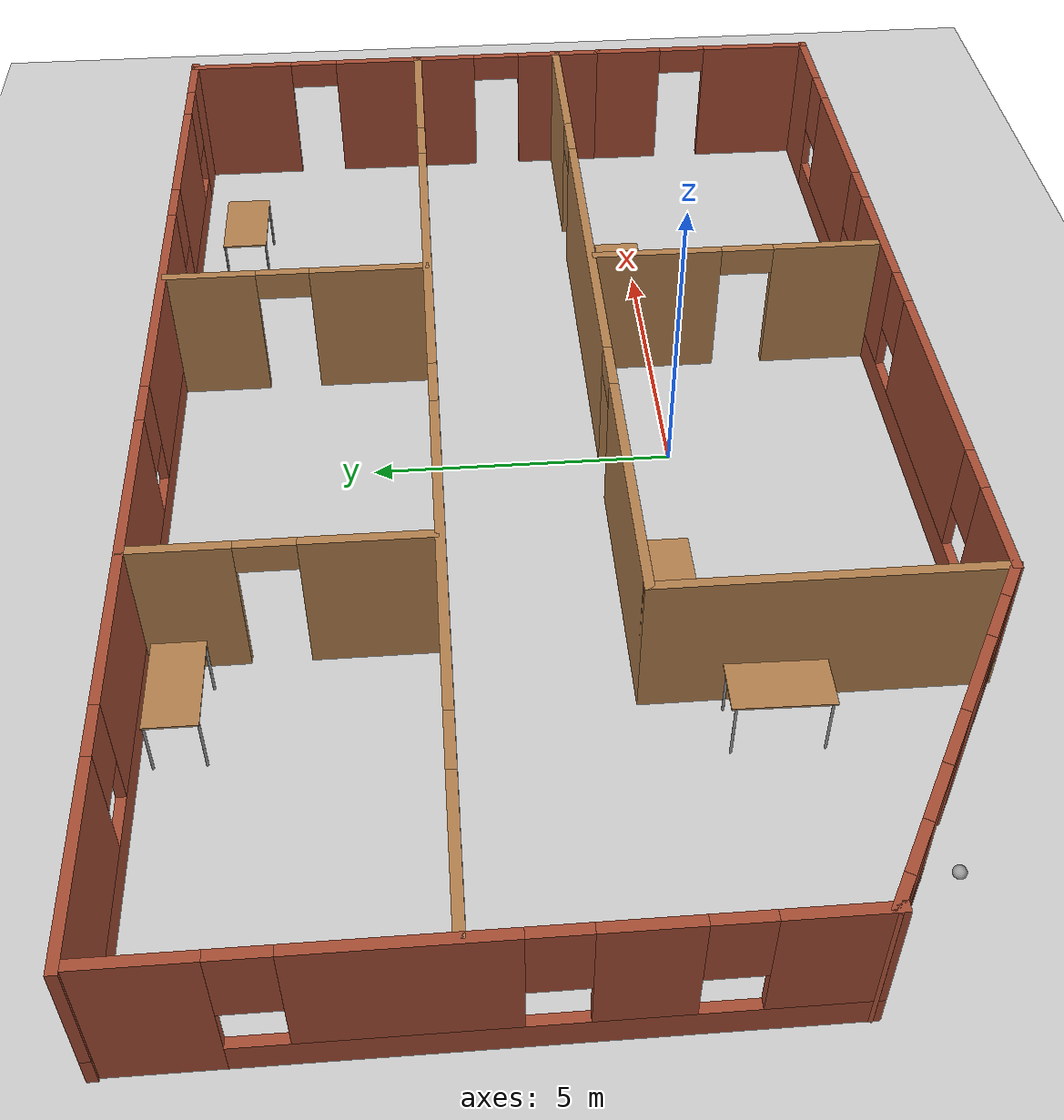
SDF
<sdf version="1.6">
 <world name="default">
  <model name="ground_plane">
   <static>1</static>
   <link name="link">
    <collision name="collision">
     <geometry><plane><normal>0 0 1</normal><size>100 100</size></plane></geometry>
     <surface><friction><ode><mu>100</mu><mu2>50</mu2></ode></friction></surface>
    </collision>
    <visual name="visual">
     <cast_shadows>0</cast_shadows>
     <geometry><plane><normal>0 0 1</normal><size>100 100</size></plane></geometry>
     <material>
      <script><uri>file://media/materials/scripts/gazebo.material</uri><name>Gazebo/Grey</name></script>
     </material>
    </visual>
   </link>
  </model>
  <light name="sun" type="directional">
   <pose>0 0 10 0 -0 0</pose>
   <diffuse>0.8 0.8 0.8 1</diffuse>
   <specular>0.2 0.2 0.2 1</specular>
   <attenuation>
    <range>1000</range>
    <constant>0.9</constant>
    <linear>0.01</linear>
    <quadratic>0.001</quadratic>
   </attenuation>
   <direction>-0.5 0.1 -0.9</direction>
  </light>
  <gravity>0 0 -9.8</gravity>
  <magnetic_field>6e-06 2.3e-05 -4.2e-05</magnetic_field>
  <atmosphere type="adiabatic"/>
  <physics name="default_physics" default="0" type="ode">
   <max_step_size>0.001</max_step_size>
   <real_time_factor>1</real_time_factor>
   <real_time_update_rate>1000</real_time_update_rate>
  </physics>
  <scene><ambient>0.4 0.4 0.4 1</ambient><background>0.7 0.7 0.7 1</background><shadows>1</shadows></scene>
  <spherical_coordinates>
   <surface_model>EARTH_WGS84</surface_model>
   <latitude_deg>0</latitude_deg>
   <longitude_deg>0</longitude_deg>
   <elevation>0</elevation>
   <heading_deg>0</heading_deg>
  </spherical_coordinates>
  <model name="uche_home">
   <pose>-0.35281 2.20674 0 0 -0 0</pose>
   <link name="Wall_0">
    <pose>-7.31043 -4.71285 0 0 0 -0.523599</pose>
    <visual name="Wall_0_Visual_0">
     <pose>-2.7242 0 1.25 0 -0 0</pose>
     <geometry><box><size>0.551592 0.15 2.5</size></box></geometry>
     <material>
      <script><uri>file://media/materials/scripts/gazebo.material</uri><name>Gazebo/Bricks</name></script>
      <ambient>0.435294 0.796078 0.67451 1</ambient>
     </material>
     <meta><layer>0</layer></meta>
    </visual>
    <collision name="Wall_0_Collision_0">
     <geometry><box><size>0.551592 0.15 2.5</size></box></geometry>
     <pose>-2.7242 0 1.25 0 -0 0</pose>
    </collision>
    <visual name="Wall_0_Visual_1">
     <pose>0.822583 0 1.25 0 -0 0</pose>
     <geometry><box><size>1.35037 0.15 2.5</size></box></geometry>
     <material>
      <script><uri>file://media/materials/scripts/gazebo.material</uri><name>Gazebo/Bricks</name></script>
      <ambient>0.435294 0.796078 0.67451 1</ambient>
     </material>
     <meta><layer>0</layer></meta>
    </visual>
    <collision name="Wall_0_Collision_1">
     <geometry><box><size>1.35037 0.15 2.5</size></box></geometry>
     <pose>0.822583 0 1.25 0 -0 0</pose>
    </collision>
    <visual name="Wall_0_Visual_2">
     <pose>-1.6005 0 0.25 0 -0 0</pose>
     <geometry><box><size>1.69581 0.15 0.5</size></box></geometry>
     <material>
      <script><uri>file://media/materials/scripts/gazebo.material</uri><name>Gazebo/Bricks</name></script>
      <ambient>0.435294 0.796078 0.67451 1</ambient>
     </material>
     <meta><layer>0</layer></meta>
    </visual>
    <collision name="Wall_0_Collision_2">
     <geometry><box><size>1.69581 0.15 0.5</size></box></geometry>
     <pose>-1.6005 0 0.25 0 -0 0</pose>
    </collision>
    <visual name="Wall_0_Visual_3">
     <pose>2.24888 0 0.25 0 -0 0</pose>
     <geometry><box><size>1.50223 0.15 0.5</size></box></geometry>
     <material>
      <script><uri>file://media/materials/scripts/gazebo.material</uri><name>Gazebo/Bricks</name></script>
      <ambient>0.435294 0.796078 0.67451 1</ambient>
     </material>
     <meta><layer>0</layer></meta>
    </visual>
    <collision name="Wall_0_Collision_3">
     <geometry><box><size>1.50223 0.15 0.5</size></box></geometry>
     <pose>2.24888 0 0.25 0 -0 0</pose>
    </collision>
    <visual name="Wall_0_Visual_4">
     <pose>-1.2005 0 1.5 0 -0 0</pose>
     <geometry><box><size>0.895809 0.15 2</size></box></geometry>
     <material>
      <script><uri>file://media/materials/scripts/gazebo.material</uri><name>Gazebo/Bricks</name></script>
      <ambient>0.435294 0.796078 0.67451 1</ambient>
     </material>
     <meta><layer>0</layer></meta>
    </visual>
    <collision name="Wall_0_Collision_4">
     <geometry><box><size>0.895809 0.15 2</size></box></geometry>
     <pose>-1.2005 0 1.5 0 -0 0</pose>
    </collision>
    <visual name="Wall_0_Visual_5">
     <pose>-1.2005 0 1.5 0 -0 0</pose>
     <geometry><box><size>0.895809 0.15 2</size></box></geometry>
     <material>
      <script><uri>file://media/materials/scripts/gazebo.material</uri><name>Gazebo/Bricks</name></script>
      <ambient>0.435294 0.796078 0.67451 1</ambient>
     </material>
     <meta><layer>0</layer></meta>
    </visual>
    <collision name="Wall_0_Collision_5">
     <geometry><box><size>0.895809 0.15 2</size></box></geometry>
     <pose>-1.2005 0 1.5 0 -0 0</pose>
    </collision>
    <visual name="Wall_0_Visual_6">
     <pose>2.64888 0 1.5 0 -0 0</pose>
     <geometry><box><size>0.702234 0.15 2</size></box></geometry>
     <material>
      <script><uri>file://media/materials/scripts/gazebo.material</uri><name>Gazebo/Bricks</name></script>
      <ambient>0.435294 0.796078 0.67451 1</ambient>
     </material>
     <meta><layer>0</layer></meta>
    </visual>
    <collision name="Wall_0_Collision_6">
     <geometry><box><size>0.702234 0.15 2</size></box></geometry>
     <pose>2.64888 0 1.5 0 -0 0</pose>
    </collision>
    <visual name="Wall_0_Visual_7">
     <pose>-2.04841 0 1.9 0 -0 0</pose>
     <geometry><box><size>0.8 0.15 1.2</size></box></geometry>
     <material>
      <script><uri>file://media/materials/scripts/gazebo.material</uri><name>Gazebo/Bricks</name></script>
      <ambient>0.435294 0.796078 0.67451 1</ambient>
     </material>
     <meta><layer>0</layer></meta>
    </visual>
    <collision name="Wall_0_Collision_7">
     <geometry><box><size>0.8 0.15 1.2</size></box></geometry>
     <pose>-2.04841 0 1.9 0 -0 0</pose>
    </collision>
    <visual name="Wall_0_Visual_8">
     <pose>1.89777 0 1.9 0 -0 0</pose>
     <geometry><box><size>0.8 0.15 1.2</size></box></geometry>
     <material>
      <script><uri>file://media/materials/scripts/gazebo.material</uri><name>Gazebo/Bricks</name></script>
      <ambient>0.435294 0.796078 0.67451 1</ambient>
     </material>
     <meta><layer>0</layer></meta>
    </visual>
    <collision name="Wall_0_Collision_8">
     <geometry><box><size>0.8 0.15 1.2</size></box></geometry>
     <pose>1.89777 0 1.9 0 -0 0</pose>
    </collision>
    <visual name="Wall_0_Visual_9">
     <pose>-0.302599 0 2.25 0 -0 0</pose>
     <geometry><box><size>0.9 0.15 0.5</size></box></geometry>
     <material>
      <script><uri>file://media/materials/scripts/gazebo.material</uri><name>Gazebo/Bricks</name></script>
      <ambient>0.435294 0.796078 0.67451 1</ambient>
     </material>
     <meta><layer>0</layer></meta>
    </visual>
    <collision name="Wall_0_Collision_9">
     <geometry><box><size>0.9 0.15 0.5</size></box></geometry>
     <pose>-0.302599 0 2.25 0 -0 0</pose>
    </collision>
    <visual name="Wall_0_Visual_10">
     <pose>-0.302599 0 2.25 0 -0 0</pose>
     <geometry><box><size>0.9 0.15 0.5</size></box></geometry>
     <material>
      <script><uri>file://media/materials/scripts/gazebo.material</uri><name>Gazebo/Bricks</name></script>
      <ambient>0.435294 0.796078 0.67451 1</ambient>
     </material>
     <meta><layer>0</layer></meta>
    </visual>
    <collision name="Wall_0_Collision_10">
     <geometry><box><size>0.9 0.15 0.5</size></box></geometry>
     <pose>-0.302599 0 2.25 0 -0 0</pose>
    </collision>
   </link>
   <link name="Wall_14">
    <pose>9.83312 -4.05174 0 0 0 -1.57571</pose>
    <visual name="Wall_14_Visual_0">
     <pose>-1.51676 0 1.25 0 -0 0</pose>
     <geometry><box><size>1.36374 0.15 2.5</size></box></geometry>
     <material>
      <script><uri>file://media/materials/scripts/gazebo.material</uri><name>Gazebo/Bricks</name></script>
      <ambient>0.435294 0.796078 0.67451 1</ambient>
     </material>
     <meta><layer>0</layer></meta>
    </visual>
    <collision name="Wall_14_Collision_0">
     <geometry><box><size>1.36374 0.15 2.5</size></box></geometry>
     <pose>-1.51676 0 1.25 0 -0 0</pose>
    </collision>
    <visual name="Wall_14_Visual_1">
     <pose>1.13187 0 1.25 0 -0 0</pose>
     <geometry><box><size>2.13352 0.15 2.5</size></box></geometry>
     <material>
      <script><uri>file://media/materials/scripts/gazebo.material</uri><name>Gazebo/Bricks</name></script>
      <ambient>0.435294 0.796078 0.67451 1</ambient>
     </material>
     <meta><layer>0</layer></meta>
    </visual>
    <collision name="Wall_14_Collision_1">
     <geometry><box><size>2.13352 0.15 2.5</size></box></geometry>
     <pose>1.13187 0 1.25 0 -0 0</pose>
    </collision>
    <visual name="Wall_14_Visual_2">
     <pose>-0.384885 0 2.25 0 -0 0</pose>
     <geometry><box><size>0.9 0.15 0.5</size></box></geometry>
     <material>
      <script><uri>file://media/materials/scripts/gazebo.material</uri><name>Gazebo/Bricks</name></script>
      <ambient>0.435294 0.796078 0.67451 1</ambient>
     </material>
     <meta><layer>0</layer></meta>
    </visual>
    <collision name="Wall_14_Collision_2">
     <geometry><box><size>0.9 0.15 0.5</size></box></geometry>
     <pose>-0.384885 0 2.25 0 -0 0</pose>
    </collision>
   </link>
   <link name="Wall_15">
    <pose>2.52269 -6.17535 0 0 -0 3.14159</pose>
    <visual name="Wall_15_Visual_0">
     <pose>-6.66557 0 1.25 0 -0 0</pose>
     <geometry><box><size>1.41886 0.15 2.5</size></box></geometry>
     <material>
      <script><uri>file://media/materials/scripts/gazebo.material</uri><name>Gazebo/Bricks</name></script>
      <ambient>0.435294 0.796078 0.67451 1</ambient>
     </material>
     <meta><layer>0</layer></meta>
    </visual>
    <collision name="Wall_15_Collision_0">
     <geometry><box><size>1.41886 0.15 2.5</size></box></geometry>
     <pose>-6.66557 0 1.25 0 -0 0</pose>
    </collision>
    <visual name="Wall_15_Visual_1">
     <pose>0.70943 0 0.25 0 -0 0</pose>
     <geometry><box><size>13.3311 0.15 0.5</size></box></geometry>
     <material>
      <script><uri>file://media/materials/scripts/gazebo.material</uri><name>Gazebo/Bricks</name></script>
      <ambient>0.435294 0.796078 0.67451 1</ambient>
     </material>
     <meta><layer>0</layer></meta>
    </visual>
    <collision name="Wall_15_Collision_1">
     <geometry><box><size>13.3311 0.15 0.5</size></box></geometry>
     <pose>0.70943 0 0.25 0 -0 0</pose>
    </collision>
    <visual name="Wall_15_Visual_2">
     <pose>-3.83238 0 1.5 0 -0 0</pose>
     <geometry><box><size>2.64752 0.15 2</size></box></geometry>
     <material>
      <script><uri>file://media/materials/scripts/gazebo.material</uri><name>Gazebo/Bricks</name></script>
      <ambient>0.435294 0.796078 0.67451 1</ambient>
     </material>
     <meta><layer>0</layer></meta>
    </visual>
    <collision name="Wall_15_Collision_2">
     <geometry><box><size>2.64752 0.15 2</size></box></geometry>
     <pose>-3.83238 0 1.5 0 -0 0</pose>
    </collision>
    <visual name="Wall_15_Visual_3">
     <pose>-0.576767 0 1.5 0 -0 0</pose>
     <geometry><box><size>2.26371 0.15 2</size></box></geometry>
     <material>
      <script><uri>file://media/materials/scripts/gazebo.material</uri><name>Gazebo/Bricks</name></script>
      <ambient>0.435294 0.796078 0.67451 1</ambient>
     </material>
     <meta><layer>0</layer></meta>
    </visual>
    <collision name="Wall_15_Collision_3">
     <geometry><box><size>2.26371 0.15 2</size></box></geometry>
     <pose>-0.576767 0 1.5 0 -0 0</pose>
    </collision>
    <visual name="Wall_15_Visual_4">
     <pose>3.16977 0 1.5 0 -0 0</pose>
     <geometry><box><size>3.62937 0.15 2</size></box></geometry>
     <material>
      <script><uri>file://media/materials/scripts/gazebo.material</uri><name>Gazebo/Bricks</name></script>
      <ambient>0.435294 0.796078 0.67451 1</ambient>
     </material>
     <meta><layer>0</layer></meta>
    </visual>
    <collision name="Wall_15_Collision_4">
     <geometry><box><size>3.62937 0.15 2</size></box></geometry>
     <pose>3.16977 0 1.5 0 -0 0</pose>
    </collision>
    <visual name="Wall_15_Visual_5">
     <pose>6.57973 0 1.5 0 -0 0</pose>
     <geometry><box><size>1.59055 0.15 2</size></box></geometry>
     <material>
      <script><uri>file://media/materials/scripts/gazebo.material</uri><name>Gazebo/Bricks</name></script>
      <ambient>0.435294 0.796078 0.67451 1</ambient>
     </material>
     <meta><layer>0</layer></meta>
    </visual>
    <collision name="Wall_15_Collision_5">
     <geometry><box><size>1.59055 0.15 2</size></box></geometry>
     <pose>6.57973 0 1.5 0 -0 0</pose>
    </collision>
    <visual name="Wall_15_Visual_6">
     <pose>-5.55614 0 1.9 0 -0 0</pose>
     <geometry><box><size>0.8 0.15 1.2</size></box></geometry>
     <material>
      <script><uri>file://media/materials/scripts/gazebo.material</uri><name>Gazebo/Bricks</name></script>
      <ambient>0.435294 0.796078 0.67451 1</ambient>
     </material>
     <meta><layer>0</layer></meta>
    </visual>
    <collision name="Wall_15_Collision_6">
     <geometry><box><size>0.8 0.15 1.2</size></box></geometry>
     <pose>-5.55614 0 1.9 0 -0 0</pose>
    </collision>
    <visual name="Wall_15_Visual_7">
     <pose>-2.10862 0 1.9 0 -0 0</pose>
     <geometry><box><size>0.8 0.15 1.2</size></box></geometry>
     <material>
      <script><uri>file://media/materials/scripts/gazebo.material</uri><name>Gazebo/Bricks</name></script>
      <ambient>0.435294 0.796078 0.67451 1</ambient>
     </material>
     <meta><layer>0</layer></meta>
    </visual>
    <collision name="Wall_15_Collision_7">
     <geometry><box><size>0.8 0.15 1.2</size></box></geometry>
     <pose>-2.10862 0 1.9 0 -0 0</pose>
    </collision>
    <visual name="Wall_15_Visual_8">
     <pose>0.955088 0 1.9 0 -0 0</pose>
     <geometry><box><size>0.8 0.15 1.2</size></box></geometry>
     <material>
      <script><uri>file://media/materials/scripts/gazebo.material</uri><name>Gazebo/Bricks</name></script>
      <ambient>0.435294 0.796078 0.67451 1</ambient>
     </material>
     <meta><layer>0</layer></meta>
    </visual>
    <collision name="Wall_15_Collision_8">
     <geometry><box><size>0.8 0.15 1.2</size></box></geometry>
     <pose>0.955088 0 1.9 0 -0 0</pose>
    </collision>
    <visual name="Wall_15_Visual_9">
     <pose>5.38445 0 1.9 0 -0 0</pose>
     <geometry><box><size>0.8 0.15 1.2</size></box></geometry>
     <material>
      <script><uri>file://media/materials/scripts/gazebo.material</uri><name>Gazebo/Bricks</name></script>
      <ambient>0.435294 0.796078 0.67451 1</ambient>
     </material>
     <meta><layer>0</layer></meta>
    </visual>
    <collision name="Wall_15_Collision_9">
     <geometry><box><size>0.8 0.15 1.2</size></box></geometry>
     <pose>5.38445 0 1.9 0 -0 0</pose>
    </collision>
   </link>
   <link name="Wall_17">
    <collision name="Wall_17_Collision">
     <geometry><box><size>5.25 0.15 2.5</size></box></geometry>
     <pose>0 0 1.25 0 -0 0</pose>
    </collision>
    <visual name="Wall_17_Visual">
     <pose>0 0 1.25 0 -0 0</pose>
     <geometry><box><size>5.25 0.15 2.5</size></box></geometry>
     <material>
      <script><uri>file://media/materials/scripts/gazebo.material</uri><name>Gazebo/Wood</name></script>
      <ambient>0.435294 0.796078 0.67451 1</ambient>
     </material>
     <meta><layer>0</layer></meta>
    </visual>
    <pose>-4.77731 -3.62535 0 0 -0 1.5708</pose>
   </link>
   <link name="Wall_18">
    <pose>2.52269 -1.07535 0 0 -0 0</pose>
    <visual name="Wall_18_Visual_0">
     <pose>-5.21907 0 1.25 0 -0 0</pose>
     <geometry><box><size>4.31186 0.15 2.5</size></box></geometry>
     <material>
      <script><uri>file://media/materials/scripts/gazebo.material</uri><name>Gazebo/Wood</name></script>
      <ambient>0.435294 0.796078 0.67451 1</ambient>
     </material>
     <meta><layer>0</layer></meta>
    </visual>
    <collision name="Wall_18_Collision_0">
     <geometry><box><size>4.31186 0.15 2.5</size></box></geometry>
     <pose>-5.21907 0 1.25 0 -0 0</pose>
    </collision>
    <visual name="Wall_18_Visual_1">
     <pose>0.769922 0 1.25 0 -0 0</pose>
     <geometry><box><size>5.86612 0.15 2.5</size></box></geometry>
     <material>
      <script><uri>file://media/materials/scripts/gazebo.material</uri><name>Gazebo/Wood</name></script>
      <ambient>0.435294 0.796078 0.67451 1</ambient>
     </material>
     <meta><layer>0</layer></meta>
    </visual>
    <collision name="Wall_18_Collision_1">
     <geometry><box><size>5.86612 0.15 2.5</size></box></geometry>
     <pose>0.769922 0 1.25 0 -0 0</pose>
    </collision>
    <visual name="Wall_18_Visual_2">
     <pose>5.98899 0 1.25 0 -0 0</pose>
     <geometry><box><size>2.77202 0.15 2.5</size></box></geometry>
     <material>
      <script><uri>file://media/materials/scripts/gazebo.material</uri><name>Gazebo/Wood</name></script>
      <ambient>0.435294 0.796078 0.67451 1</ambient>
     </material>
     <meta><layer>0</layer></meta>
    </visual>
    <collision name="Wall_18_Collision_2">
     <geometry><box><size>2.77202 0.15 2.5</size></box></geometry>
     <pose>5.98899 0 1.25 0 -0 0</pose>
    </collision>
    <visual name="Wall_18_Visual_3">
     <pose>-2.61314 0 2.25 0 -0 0</pose>
     <geometry><box><size>0.9 0.15 0.5</size></box></geometry>
     <material>
      <script><uri>file://media/materials/scripts/gazebo.material</uri><name>Gazebo/Wood</name></script>
      <ambient>0.435294 0.796078 0.67451 1</ambient>
     </material>
     <meta><layer>0</layer></meta>
    </visual>
    <collision name="Wall_18_Collision_3">
     <geometry><box><size>0.9 0.15 0.5</size></box></geometry>
     <pose>-2.61314 0 2.25 0 -0 0</pose>
    </collision>
    <visual name="Wall_18_Visual_4">
     <pose>4.15298 0 2.25 0 -0 0</pose>
     <geometry><box><size>0.9 0.15 0.5</size></box></geometry>
     <material>
      <script><uri>file://media/materials/scripts/gazebo.material</uri><name>Gazebo/Wood</name></script>
      <ambient>0.435294 0.796078 0.67451 1</ambient>
     </material>
     <meta><layer>0</layer></meta>
    </visual>
    <collision name="Wall_18_Collision_4">
     <geometry><box><size>0.9 0.15 0.5</size></box></geometry>
     <pose>4.15298 0 2.25 0 -0 0</pose>
    </collision>
   </link>
   <link name="Wall_2">
    <pose>9.83302 2.13648 0 0 -0 1.57339</pose>
    <visual name="Wall_2_Visual_0">
     <pose>-3.29202 0 1.25 0 -0 0</pose>
     <geometry><box><size>1.69524 0.15 2.5</size></box></geometry>
     <material>
      <script><uri>file://media/materials/scripts/gazebo.material</uri><name>Gazebo/Bricks</name></script>
      <ambient>0.435294 0.796078 0.67451 1</ambient>
     </material>
     <meta><layer>0</layer></meta>
    </visual>
    <collision name="Wall_2_Collision_0">
     <geometry><box><size>1.69524 0.15 2.5</size></box></geometry>
     <pose>-3.29202 0 1.25 0 -0 0</pose>
    </collision>
    <visual name="Wall_2_Visual_1">
     <pose>-0.148495 0 1.25 0 -0 0</pose>
     <geometry><box><size>2.7918 0.15 2.5</size></box></geometry>
     <material>
      <script><uri>file://media/materials/scripts/gazebo.material</uri><name>Gazebo/Bricks</name></script>
      <ambient>0.435294 0.796078 0.67451 1</ambient>
     </material>
     <meta><layer>0</layer></meta>
    </visual>
    <collision name="Wall_2_Collision_1">
     <geometry><box><size>2.7918 0.15 2.5</size></box></geometry>
     <pose>-0.148495 0 1.25 0 -0 0</pose>
    </collision>
    <visual name="Wall_2_Visual_2">
     <pose>3.14352 0 1.25 0 -0 0</pose>
     <geometry><box><size>1.99223 0.15 2.5</size></box></geometry>
     <material>
      <script><uri>file://media/materials/scripts/gazebo.material</uri><name>Gazebo/Bricks</name></script>
      <ambient>0.435294 0.796078 0.67451 1</ambient>
     </material>
     <meta><layer>0</layer></meta>
    </visual>
    <collision name="Wall_2_Collision_2">
     <geometry><box><size>1.99223 0.15 2.5</size></box></geometry>
     <pose>3.14352 0 1.25 0 -0 0</pose>
    </collision>
    <visual name="Wall_2_Visual_3">
     <pose>-1.9944 0 2.25 0 -0 0</pose>
     <geometry><box><size>0.9 0.15 0.5</size></box></geometry>
     <material>
      <script><uri>file://media/materials/scripts/gazebo.material</uri><name>Gazebo/Bricks</name></script>
      <ambient>0.435294 0.796078 0.67451 1</ambient>
     </material>
     <meta><layer>0</layer></meta>
    </visual>
    <collision name="Wall_2_Collision_3">
     <geometry><box><size>0.9 0.15 0.5</size></box></geometry>
     <pose>-1.9944 0 2.25 0 -0 0</pose>
    </collision>
    <visual name="Wall_2_Visual_4">
     <pose>1.69741 0 2.25 0 -0 0</pose>
     <geometry><box><size>0.9 0.15 0.5</size></box></geometry>
     <material>
      <script><uri>file://media/materials/scripts/gazebo.material</uri><name>Gazebo/Bricks</name></script>
      <ambient>0.435294 0.796078 0.67451 1</ambient>
     </material>
     <meta><layer>0</layer></meta>
    </visual>
    <collision name="Wall_2_Collision_4">
     <geometry><box><size>0.9 0.15 0.5</size></box></geometry>
     <pose>1.69741 0 2.25 0 -0 0</pose>
    </collision>
   </link>
   <link name="Wall_20">
    <pose>0.017728 1.73252 0 0 -0 3.14159</pose>
    <visual name="Wall_20_Visual_0">
     <pose>-8.52805 0 1.25 0 -0 0</pose>
     <geometry><box><size>2.6939 0.15 2.5</size></box></geometry>
     <material>
      <script><uri>file://media/materials/scripts/gazebo.material</uri><name>Gazebo/Wood</name></script>
      <ambient>0.435294 0.796078 0.67451 1</ambient>
     </material>
     <meta><layer>0</layer></meta>
    </visual>
    <collision name="Wall_20_Collision_0">
     <geometry><box><size>2.6939 0.15 2.5</size></box></geometry>
     <pose>-8.52805 0 1.25 0 -0 0</pose>
    </collision>
    <visual name="Wall_20_Visual_1">
     <pose>-3.21806 0 1.25 0 -0 0</pose>
     <geometry><box><size>6.12607 0.15 2.5</size></box></geometry>
     <material>
      <script><uri>file://media/materials/scripts/gazebo.material</uri><name>Gazebo/Wood</name></script>
      <ambient>0.435294 0.796078 0.67451 1</ambient>
     </material>
     <meta><layer>0</layer></meta>
    </visual>
    <collision name="Wall_20_Collision_1">
     <geometry><box><size>6.12607 0.15 2.5</size></box></geometry>
     <pose>-3.21806 0 1.25 0 -0 0</pose>
    </collision>
    <visual name="Wall_20_Visual_2">
     <pose>3.71939 0 1.25 0 -0 0</pose>
     <geometry><box><size>5.94882 0.15 2.5</size></box></geometry>
     <material>
      <script><uri>file://media/materials/scripts/gazebo.material</uri><name>Gazebo/Wood</name></script>
      <ambient>0.435294 0.796078 0.67451 1</ambient>
     </material>
     <meta><layer>0</layer></meta>
    </visual>
    <collision name="Wall_20_Collision_2">
     <geometry><box><size>5.94882 0.15 2.5</size></box></geometry>
     <pose>3.71939 0 1.25 0 -0 0</pose>
    </collision>
    <visual name="Wall_20_Visual_3">
     <pose>8.7344 0 1.25 0 -0 0</pose>
     <geometry><box><size>2.2812 0.15 2.5</size></box></geometry>
     <material>
      <script><uri>file://media/materials/scripts/gazebo.material</uri><name>Gazebo/Wood</name></script>
      <ambient>0.435294 0.796078 0.67451 1</ambient>
     </material>
     <meta><layer>0</layer></meta>
    </visual>
    <collision name="Wall_20_Collision_3">
     <geometry><box><size>2.2812 0.15 2.5</size></box></geometry>
     <pose>8.7344 0 1.25 0 -0 0</pose>
    </collision>
    <visual name="Wall_20_Visual_4">
     <pose>-6.7311 0 2.25 0 -0 0</pose>
     <geometry><box><size>0.9 0.15 0.5</size></box></geometry>
     <material>
      <script><uri>file://media/materials/scripts/gazebo.material</uri><name>Gazebo/Wood</name></script>
      <ambient>0.435294 0.796078 0.67451 1</ambient>
     </material>
     <meta><layer>0</layer></meta>
    </visual>
    <collision name="Wall_20_Collision_4">
     <geometry><box><size>0.9 0.15 0.5</size></box></geometry>
     <pose>-6.7311 0 2.25 0 -0 0</pose>
    </collision>
    <visual name="Wall_20_Visual_5">
     <pose>0.294977 0 2.25 0 -0 0</pose>
     <geometry><box><size>0.9 0.15 0.5</size></box></geometry>
     <material>
      <script><uri>file://media/materials/scripts/gazebo.material</uri><name>Gazebo/Wood</name></script>
      <ambient>0.435294 0.796078 0.67451 1</ambient>
     </material>
     <meta><layer>0</layer></meta>
    </visual>
    <collision name="Wall_20_Collision_5">
     <geometry><box><size>0.9 0.15 0.5</size></box></geometry>
     <pose>0.294977 0 2.25 0 -0 0</pose>
    </collision>
    <visual name="Wall_20_Visual_6">
     <pose>7.14379 0 2.25 0 -0 0</pose>
     <geometry><box><size>0.9 0.15 0.5</size></box></geometry>
     <material>
      <script><uri>file://media/materials/scripts/gazebo.material</uri><name>Gazebo/Wood</name></script>
      <ambient>0.435294 0.796078 0.67451 1</ambient>
     </material>
     <meta><layer>0</layer></meta>
    </visual>
    <collision name="Wall_20_Collision_6">
     <geometry><box><size>0.9 0.15 0.5</size></box></geometry>
     <pose>7.14379 0 2.25 0 -0 0</pose>
    </collision>
   </link>
   <link name="Wall_23">
    <pose>2.77937 3.96072 0 0 -0 1.5708</pose>
    <visual name="Wall_23_Visual_0">
     <pose>-1.23634 0 1.25 0 -0 0</pose>
     <geometry><box><size>2.02733 0.15 2.5</size></box></geometry>
     <material>
      <script><uri>file://media/materials/scripts/gazebo.material</uri><name>Gazebo/Wood</name></script>
      <ambient>0.435294 0.796078 0.67451 1</ambient>
     </material>
     <meta><layer>0</layer></meta>
    </visual>
    <collision name="Wall_23_Collision_0">
     <geometry><box><size>2.02733 0.15 2.5</size></box></geometry>
     <pose>-1.23634 0 1.25 0 -0 0</pose>
    </collision>
    <visual name="Wall_23_Visual_1">
     <pose>1.46366 0 1.25 0 -0 0</pose>
     <geometry><box><size>1.57267 0.15 2.5</size></box></geometry>
     <material>
      <script><uri>file://media/materials/scripts/gazebo.material</uri><name>Gazebo/Wood</name></script>
      <ambient>0.435294 0.796078 0.67451 1</ambient>
     </material>
     <meta><layer>0</layer></meta>
    </visual>
    <collision name="Wall_23_Collision_1">
     <geometry><box><size>1.57267 0.15 2.5</size></box></geometry>
     <pose>1.46366 0 1.25 0 -0 0</pose>
    </collision>
    <visual name="Wall_23_Visual_2">
     <pose>0.227329 0 2.25 0 -0 0</pose>
     <geometry><box><size>0.9 0.15 0.5</size></box></geometry>
     <material>
      <script><uri>file://media/materials/scripts/gazebo.material</uri><name>Gazebo/Wood</name></script>
      <ambient>0.435294 0.796078 0.67451 1</ambient>
     </material>
     <meta><layer>0</layer></meta>
    </visual>
    <collision name="Wall_23_Collision_2">
     <geometry><box><size>0.9 0.15 0.5</size></box></geometry>
     <pose>0.227329 0 2.25 0 -0 0</pose>
    </collision>
   </link>
   <link name="Wall_25">
    <pose>-3.56811 4.00002 0 0 -0 1.5708</pose>
    <visual name="Wall_25_Visual_0">
     <pose>-1.25599 0 1.25 0 -0 0</pose>
     <geometry><box><size>1.98803 0.15 2.5</size></box></geometry>
     <material>
      <script><uri>file://media/materials/scripts/gazebo.material</uri><name>Gazebo/Wood</name></script>
      <ambient>0.435294 0.796078 0.67451 1</ambient>
     </material>
     <meta><layer>0</layer></meta>
    </visual>
    <collision name="Wall_25_Collision_0">
     <geometry><box><size>1.98803 0.15 2.5</size></box></geometry>
     <pose>-1.25599 0 1.25 0 -0 0</pose>
    </collision>
    <visual name="Wall_25_Visual_1">
     <pose>1.44401 0 1.25 0 -0 0</pose>
     <geometry><box><size>1.61197 0.15 2.5</size></box></geometry>
     <material>
      <script><uri>file://media/materials/scripts/gazebo.material</uri><name>Gazebo/Wood</name></script>
      <ambient>0.435294 0.796078 0.67451 1</ambient>
     </material>
     <meta><layer>0</layer></meta>
    </visual>
    <collision name="Wall_25_Collision_1">
     <geometry><box><size>1.61197 0.15 2.5</size></box></geometry>
     <pose>1.44401 0 1.25 0 -0 0</pose>
    </collision>
    <visual name="Wall_25_Visual_2">
     <pose>0.188027 0 2.25 0 -0 0</pose>
     <geometry><box><size>0.9 0.15 0.5</size></box></geometry>
     <material>
      <script><uri>file://media/materials/scripts/gazebo.material</uri><name>Gazebo/Wood</name></script>
      <ambient>0.435294 0.796078 0.67451 1</ambient>
     </material>
     <meta><layer>0</layer></meta>
    </visual>
    <collision name="Wall_25_Collision_2">
     <geometry><box><size>0.9 0.15 0.5</size></box></geometry>
     <pose>0.188027 0 2.25 0 -0 0</pose>
    </collision>
   </link>
   <link name="Wall_27">
    <pose>2.85219 -3.59612 0 0 0 -1.5708</pose>
    <visual name="Wall_27_Visual_0">
     <pose>-1.38115 0 1.25 0 -0 0</pose>
     <geometry><box><size>2.23771 0.15 2.5</size></box></geometry>
     <material>
      <script><uri>file://media/materials/scripts/gazebo.material</uri><name>Gazebo/Wood</name></script>
      <ambient>0.435294 0.796078 0.67451 1</ambient>
     </material>
     <meta><layer>0</layer></meta>
    </visual>
    <collision name="Wall_27_Collision_0">
     <geometry><box><size>2.23771 0.15 2.5</size></box></geometry>
     <pose>-1.38115 0 1.25 0 -0 0</pose>
    </collision>
    <visual name="Wall_27_Visual_1">
     <pose>1.56885 0 1.25 0 -0 0</pose>
     <geometry><box><size>1.86229 0.15 2.5</size></box></geometry>
     <material>
      <script><uri>file://media/materials/scripts/gazebo.material</uri><name>Gazebo/Wood</name></script>
      <ambient>0.435294 0.796078 0.67451 1</ambient>
     </material>
     <meta><layer>0</layer></meta>
    </visual>
    <collision name="Wall_27_Collision_1">
     <geometry><box><size>1.86229 0.15 2.5</size></box></geometry>
     <pose>1.56885 0 1.25 0 -0 0</pose>
    </collision>
    <visual name="Wall_27_Visual_2">
     <pose>0.187706 0 2.25 0 -0 0</pose>
     <geometry><box><size>0.9 0.15 0.5</size></box></geometry>
     <material>
      <script><uri>file://media/materials/scripts/gazebo.material</uri><name>Gazebo/Wood</name></script>
      <ambient>0.435294 0.796078 0.67451 1</ambient>
     </material>
     <meta><layer>0</layer></meta>
    </visual>
    <collision name="Wall_27_Collision_2">
     <geometry><box><size>0.9 0.15 0.5</size></box></geometry>
     <pose>0.187706 0 2.25 0 -0 0</pose>
    </collision>
   </link>
   <link name="Wall_3">
    <pose>0 6.20195 0 0 -0 3.14151</pose>
    <visual name="Wall_3_Visual_0">
     <pose>-9.40109 0 1.25 0 -0 0</pose>
     <geometry><box><size>1.11584 0.15 2.5</size></box></geometry>
     <material>
      <script><uri>file://media/materials/scripts/gazebo.material</uri><name>Gazebo/Bricks</name></script>
      <ambient>0.435294 0.796078 0.67451 1</ambient>
     </material>
     <meta><layer>0</layer></meta>
    </visual>
    <collision name="Wall_3_Collision_0">
     <geometry><box><size>1.11584 0.15 2.5</size></box></geometry>
     <pose>-9.40109 0 1.25 0 -0 0</pose>
    </collision>
    <visual name="Wall_3_Visual_1">
     <pose>0.557921 0 0.25 0 -0 0</pose>
     <geometry><box><size>18.8022 0.15 0.5</size></box></geometry>
     <material>
      <script><uri>file://media/materials/scripts/gazebo.material</uri><name>Gazebo/Bricks</name></script>
      <ambient>0.435294 0.796078 0.67451 1</ambient>
     </material>
     <meta><layer>0</layer></meta>
    </visual>
    <collision name="Wall_3_Collision_1">
     <geometry><box><size>18.8022 0.15 0.5</size></box></geometry>
     <pose>0.557921 0 0.25 0 -0 0</pose>
    </collision>
    <visual name="Wall_3_Visual_2">
     <pose>-6.73108 0 1.5 0 -0 0</pose>
     <geometry><box><size>2.62417 0.15 2</size></box></geometry>
     <material>
      <script><uri>file://media/materials/scripts/gazebo.material</uri><name>Gazebo/Bricks</name></script>
      <ambient>0.435294 0.796078 0.67451 1</ambient>
     </material>
     <meta><layer>0</layer></meta>
    </visual>
    <collision name="Wall_3_Collision_2">
     <geometry><box><size>2.62417 0.15 2</size></box></geometry>
     <pose>-6.73108 0 1.5 0 -0 0</pose>
    </collision>
    <visual name="Wall_3_Visual_3">
     <pose>-2.29038 0 1.5 0 -0 0</pose>
     <geometry><box><size>4.65724 0.15 2</size></box></geometry>
     <material>
      <script><uri>file://media/materials/scripts/gazebo.material</uri><name>Gazebo/Bricks</name></script>
      <ambient>0.435294 0.796078 0.67451 1</ambient>
     </material>
     <meta><layer>0</layer></meta>
    </visual>
    <collision name="Wall_3_Collision_3">
     <geometry><box><size>4.65724 0.15 2</size></box></geometry>
     <pose>-2.29038 0 1.5 0 -0 0</pose>
    </collision>
    <visual name="Wall_3_Visual_4">
     <pose>3.54139 0 1.5 0 -0 0</pose>
     <geometry><box><size>5.40629 0.15 2</size></box></geometry>
     <material>
      <script><uri>file://media/materials/scripts/gazebo.material</uri><name>Gazebo/Bricks</name></script>
      <ambient>0.435294 0.796078 0.67451 1</ambient>
     </material>
     <meta><layer>0</layer></meta>
    </visual>
    <collision name="Wall_3_Collision_4">
     <geometry><box><size>5.40629 0.15 2</size></box></geometry>
     <pose>3.54139 0 1.5 0 -0 0</pose>
    </collision>
    <visual name="Wall_3_Visual_5">
     <pose>8.50177 0 1.5 0 -0 0</pose>
     <geometry><box><size>2.91448 0.15 2</size></box></geometry>
     <material>
      <script><uri>file://media/materials/scripts/gazebo.material</uri><name>Gazebo/Bricks</name></script>
      <ambient>0.435294 0.796078 0.67451 1</ambient>
     </material>
     <meta><layer>0</layer></meta>
    </visual>
    <collision name="Wall_3_Collision_5">
     <geometry><box><size>2.91448 0.15 2</size></box></geometry>
     <pose>8.50177 0 1.5 0 -0 0</pose>
    </collision>
    <visual name="Wall_3_Visual_6">
     <pose>-8.44317 0 1.9 0 -0 0</pose>
     <geometry><box><size>0.8 0.15 1.2</size></box></geometry>
     <material>
      <script><uri>file://media/materials/scripts/gazebo.material</uri><name>Gazebo/Bricks</name></script>
      <ambient>0.435294 0.796078 0.67451 1</ambient>
     </material>
     <meta><layer>0</layer></meta>
    </visual>
    <collision name="Wall_3_Collision_6">
     <geometry><box><size>0.8 0.15 1.2</size></box></geometry>
     <pose>-8.44317 0 1.9 0 -0 0</pose>
    </collision>
    <visual name="Wall_3_Visual_7">
     <pose>-5.019 0 1.9 0 -0 0</pose>
     <geometry><box><size>0.8 0.15 1.2</size></box></geometry>
     <material>
      <script><uri>file://media/materials/scripts/gazebo.material</uri><name>Gazebo/Bricks</name></script>
      <ambient>0.435294 0.796078 0.67451 1</ambient>
     </material>
     <meta><layer>0</layer></meta>
    </visual>
    <collision name="Wall_3_Collision_7">
     <geometry><box><size>0.8 0.15 1.2</size></box></geometry>
     <pose>-5.019 0 1.9 0 -0 0</pose>
    </collision>
    <visual name="Wall_3_Visual_8">
     <pose>0.438242 0 1.9 0 -0 0</pose>
     <geometry><box><size>0.8 0.15 1.2</size></box></geometry>
     <material>
      <script><uri>file://media/materials/scripts/gazebo.material</uri><name>Gazebo/Bricks</name></script>
      <ambient>0.435294 0.796078 0.67451 1</ambient>
     </material>
     <meta><layer>0</layer></meta>
    </visual>
    <collision name="Wall_3_Collision_8">
     <geometry><box><size>0.8 0.15 1.2</size></box></geometry>
     <pose>0.438242 0 1.9 0 -0 0</pose>
    </collision>
    <visual name="Wall_3_Visual_9">
     <pose>6.64453 0 1.9 0 -0 0</pose>
     <geometry><box><size>0.8 0.15 1.2</size></box></geometry>
     <material>
      <script><uri>file://media/materials/scripts/gazebo.material</uri><name>Gazebo/Bricks</name></script>
      <ambient>0.435294 0.796078 0.67451 1</ambient>
     </material>
     <meta><layer>0</layer></meta>
    </visual>
    <collision name="Wall_3_Collision_9">
     <geometry><box><size>0.8 0.15 1.2</size></box></geometry>
     <pose>6.64453 0 1.9 0 -0 0</pose>
    </collision>
   </link>
   <link name="Wall_4">
    <pose>-9.84355 1.44546 0 0 0 -1.5708</pose>
    <visual name="Wall_4_Visual_0">
     <pose>-3.98746 0 1.25 0 -0 0</pose>
     <geometry><box><size>1.68975 0.15 2.5</size></box></geometry>
     <material>
      <script><uri>file://media/materials/scripts/gazebo.material</uri><name>Gazebo/Bricks</name></script>
      <ambient>0.435294 0.796078 0.67451 1</ambient>
     </material>
     <meta><layer>0</layer></meta>
    </visual>
    <collision name="Wall_4_Collision_0">
     <geometry><box><size>1.68975 0.15 2.5</size></box></geometry>
     <pose>-3.98746 0 1.25 0 -0 0</pose>
    </collision>
    <visual name="Wall_4_Visual_1">
     <pose>0.844873 0 0.25 0 -0 0</pose>
     <geometry><box><size>7.97492 0.15 0.5</size></box></geometry>
     <material>
      <script><uri>file://media/materials/scripts/gazebo.material</uri><name>Gazebo/Bricks</name></script>
      <ambient>0.435294 0.796078 0.67451 1</ambient>
     </material>
     <meta><layer>0</layer></meta>
    </visual>
    <collision name="Wall_4_Collision_1">
     <geometry><box><size>7.97492 0.15 0.5</size></box></geometry>
     <pose>0.844873 0 0.25 0 -0 0</pose>
    </collision>
    <visual name="Wall_4_Visual_2">
     <pose>-0.950253 0 1.5 0 -0 0</pose>
     <geometry><box><size>2.78467 0.15 2</size></box></geometry>
     <material>
      <script><uri>file://media/materials/scripts/gazebo.material</uri><name>Gazebo/Bricks</name></script>
      <ambient>0.435294 0.796078 0.67451 1</ambient>
     </material>
     <meta><layer>0</layer></meta>
    </visual>
    <collision name="Wall_4_Collision_2">
     <geometry><box><size>2.78467 0.15 2</size></box></geometry>
     <pose>-0.950253 0 1.5 0 -0 0</pose>
    </collision>
    <visual name="Wall_4_Visual_3">
     <pose>1.88538 0 1.5 0 -0 0</pose>
     <geometry><box><size>1.2866 0.15 2</size></box></geometry>
     <material>
      <script><uri>file://media/materials/scripts/gazebo.material</uri><name>Gazebo/Bricks</name></script>
      <ambient>0.435294 0.796078 0.67451 1</ambient>
     </material>
     <meta><layer>0</layer></meta>
    </visual>
    <collision name="Wall_4_Collision_3">
     <geometry><box><size>1.2866 0.15 2</size></box></geometry>
     <pose>1.88538 0 1.5 0 -0 0</pose>
    </collision>
    <visual name="Wall_4_Visual_4">
     <pose>4.08051 0 1.5 0 -0 0</pose>
     <geometry><box><size>1.50365 0.15 2</size></box></geometry>
     <material>
      <script><uri>file://media/materials/scripts/gazebo.material</uri><name>Gazebo/Bricks</name></script>
      <ambient>0.435294 0.796078 0.67451 1</ambient>
     </material>
     <meta><layer>0</layer></meta>
    </visual>
    <collision name="Wall_4_Collision_4">
     <geometry><box><size>1.50365 0.15 2</size></box></geometry>
     <pose>4.08051 0 1.5 0 -0 0</pose>
    </collision>
    <visual name="Wall_4_Visual_5">
     <pose>-2.74259 0 1.9 0 -0 0</pose>
     <geometry><box><size>0.8 0.15 1.2</size></box></geometry>
     <material>
      <script><uri>file://media/materials/scripts/gazebo.material</uri><name>Gazebo/Bricks</name></script>
      <ambient>0.435294 0.796078 0.67451 1</ambient>
     </material>
     <meta><layer>0</layer></meta>
    </visual>
    <collision name="Wall_4_Collision_5">
     <geometry><box><size>0.8 0.15 1.2</size></box></geometry>
     <pose>-2.74259 0 1.9 0 -0 0</pose>
    </collision>
    <visual name="Wall_4_Visual_6">
     <pose>0.842081 0 1.9 0 -0 0</pose>
     <geometry><box><size>0.8 0.15 1.2</size></box></geometry>
     <material>
      <script><uri>file://media/materials/scripts/gazebo.material</uri><name>Gazebo/Bricks</name></script>
      <ambient>0.435294 0.796078 0.67451 1</ambient>
     </material>
     <meta><layer>0</layer></meta>
    </visual>
    <collision name="Wall_4_Collision_6">
     <geometry><box><size>0.8 0.15 1.2</size></box></geometry>
     <pose>0.842081 0 1.9 0 -0 0</pose>
    </collision>
    <visual name="Wall_4_Visual_7">
     <pose>2.92868 0 1.9 0 -0 0</pose>
     <geometry><box><size>0.8 0.15 1.2</size></box></geometry>
     <material>
      <script><uri>file://media/materials/scripts/gazebo.material</uri><name>Gazebo/Bricks</name></script>
      <ambient>0.435294 0.796078 0.67451 1</ambient>
     </material>
     <meta><layer>0</layer></meta>
    </visual>
    <collision name="Wall_4_Collision_7">
     <geometry><box><size>0.8 0.15 1.2</size></box></geometry>
     <pose>2.92868 0 1.9 0 -0 0</pose>
    </collision>
   </link>
   <static>1</static>
  </model>
  <model name="my_ball_B">
   <link name="link_0">
    <inertial>
     <mass>1</mass>
     <inertia><ixx>0.1</ixx><ixy>0</ixy><ixz>0</ixz><iyy>0.1</iyy><iyz>0</iyz><izz>0.1</izz></inertia>
    </inertial>
    <visual name="visual">
     <geometry><sphere><radius>0.1</radius></sphere></geometry>
     <material>
      <lighting>1</lighting>
      <script><uri>file://media/materials/scripts/gazebo.material</uri><name>Gazebo/Grey</name></script>
      <ambient>1 1 1 1</ambient>
      <diffuse>1 1 1 1</diffuse>
      <specular>1 1 1 1</specular>
      <emissive>1 1 1 1</emissive>
      <shader type="vertex"><normal_map>__default__</normal_map></shader>
     </material>
    </visual>
    <collision name="collision">
     <geometry><sphere><radius>0.1</radius></sphere></geometry>
     <surface>
      <friction>
       <ode><mu>1</mu><mu2>1</mu2><fdir1>0 0 0</fdir1><slip1>0</slip1><slip2>0</slip2></ode>
       <torsional>
        <coefficient>1</coefficient>
        <patch_radius>0</patch_radius>
        <surface_radius>0</surface_radius>
        <use_patch_radius>1</use_patch_radius>
        <ode><slip>0</slip></ode>
       </torsional>
      </friction>
      <bounce><restitution_coefficient>0</restitution_coefficient><threshold>1e+06</threshold></bounce>
      <contact>
       <collide_without_contact>0</collide_without_contact>
       <collide_without_contact_bitmask>1</collide_without_contact_bitmask>
       <collide_bitmask>1</collide_bitmask>
       <ode>
        <soft_cfm>0</soft_cfm>
        <soft_erp>0.2</soft_erp>
        <kp>1e+13</kp>
        <kd>1</kd>
        <max_vel>0.01</max_vel>
        <min_depth>0</min_depth>
       </ode>
       <bullet>
        <split_impulse>1</split_impulse>
        <split_impulse_penetration_threshold>-0.01</split_impulse_penetration_threshold>
        <soft_cfm>0</soft_cfm>
        <soft_erp>0.2</soft_erp>
        <kp>1e+13</kp>
        <kd>1</kd>
       </bullet>
      </contact>
     </surface>
    </collision>
   </link>
   <static>0</static>
   <pose>-8.30279 -2.73366 0 0 -0 0</pose>
  </model>
  <model name="table">
   <static>1</static>
   <link name="link">
    <collision name="surface">
     <pose>0 0 1 0 -0 0</pose>
     <geometry><box><size>1.5 0.8 0.03</size></box></geometry>
     <surface><friction><ode><mu>0.6</mu><mu2>0.6</mu2></ode></friction></surface>
    </collision>
    <visual name="visual1">
     <pose>0 0 1 0 -0 0</pose>
     <geometry><box><size>1.5 0.8 0.03</size></box></geometry>
     <material>
      <script><uri>file://media/materials/scripts/gazebo.material</uri><name>Gazebo/Wood</name></script>
     </material>
    </visual>
    <collision name="front_left_leg">
     <pose>0.68 0.38 0.5 0 -0 0</pose>
     <geometry><cylinder><radius>0.02</radius><length>1</length></cylinder></geometry>
    </collision>
    <visual name="front_left_leg">
     <pose>0.68 0.38 0.5 0 -0 0</pose>
     <geometry><cylinder><radius>0.02</radius><length>1</length></cylinder></geometry>
     <material>
      <script><uri>file://media/materials/scripts/gazebo.material</uri><name>Gazebo/Grey</name></script>
     </material>
    </visual>
    <collision name="front_right_leg">
     <pose>0.68 -0.38 0.5 0 -0 0</pose>
     <geometry><cylinder><radius>0.02</radius><length>1</length></cylinder></geometry>
    </collision>
    <visual name="front_right_leg">
     <pose>0.68 -0.38 0.5 0 -0 0</pose>
     <geometry><cylinder><radius>0.02</radius><length>1</length></cylinder></geometry>
     <material>
      <script><uri>file://media/materials/scripts/gazebo.material</uri><name>Gazebo/Grey</name></script>
     </material>
    </visual>
    <collision name="back_right_leg">
     <pose>-0.68 -0.38 0.5 0 -0 0</pose>
     <geometry><cylinder><radius>0.02</radius><length>1</length></cylinder></geometry>
    </collision>
    <visual name="back_right_leg">
     <pose>-0.68 -0.38 0.5 0 -0 0</pose>
     <geometry><cylinder><radius>0.02</radius><length>1</length></cylinder></geometry>
     <material>
      <script><uri>file://media/materials/scripts/gazebo.material</uri><name>Gazebo/Grey</name></script>
     </material>
    </visual>
    <collision name="back_left_leg">
     <pose>-0.68 0.38 0.5 0 -0 0</pose>
     <geometry><cylinder><radius>0.02</radius><length>1</length></cylinder></geometry>
    </collision>
    <visual name="back_left_leg">
     <pose>-0.68 0.38 0.5 0 -0 0</pose>
     <geometry><cylinder><radius>0.02</radius><length>1</length></cylinder></geometry>
     <material>
      <script><uri>file://media/materials/scripts/gazebo.material</uri><name>Gazebo/Grey</name></script>
     </material>
    </visual>
   </link>
   <pose>-5.11951 7.75381 0 0 -0 0</pose>
  </model>
  <model name="table_0">
   <static>1</static>
   <link name="link">
    <collision name="surface">
     <pose>0 0 1 0 -0 0</pose>
     <geometry><box><size>1.5 0.8 0.03</size></box></geometry>
     <surface><friction><ode><mu>0.6</mu><mu2>0.6</mu2></ode></friction></surface>
    </collision>
    <visual name="visual1">
     <pose>0 0 1 0 -0 0</pose>
     <geometry><box><size>1.5 0.8 0.03</size></box></geometry>
     <material>
      <script><uri>file://media/materials/scripts/gazebo.material</uri><name>Gazebo/Wood</name></script>
     </material>
    </visual>
    <collision name="front_left_leg">
     <pose>0.68 0.38 0.5 0 -0 0</pose>
     <geometry><cylinder><radius>0.02</radius><length>1</length></cylinder></geometry>
    </collision>
    <visual name="front_left_leg">
     <pose>0.68 0.38 0.5 0 -0 0</pose>
     <geometry><cylinder><radius>0.02</radius><length>1</length></cylinder></geometry>
     <material>
      <script><uri>file://media/materials/scripts/gazebo.material</uri><name>Gazebo/Grey</name></script>
     </material>
    </visual>
    <collision name="front_right_leg">
     <pose>0.68 -0.38 0.5 0 -0 0</pose>
     <geometry><cylinder><radius>0.02</radius><length>1</length></cylinder></geometry>
    </collision>
    <visual name="front_right_leg">
     <pose>0.68 -0.38 0.5 0 -0 0</pose>
     <geometry><cylinder><radius>0.02</radius><length>1</length></cylinder></geometry>
     <material>
      <script><uri>file://media/materials/scripts/gazebo.material</uri><name>Gazebo/Grey</name></script>
     </material>
    </visual>
    <collision name="back_right_leg">
     <pose>-0.68 -0.38 0.5 0 -0 0</pose>
     <geometry><cylinder><radius>0.02</radius><length>1</length></cylinder></geometry>
    </collision>
    <visual name="back_right_leg">
     <pose>-0.68 -0.38 0.5 0 -0 0</pose>
     <geometry><cylinder><radius>0.02</radius><length>1</length></cylinder></geometry>
     <material>
      <script><uri>file://media/materials/scripts/gazebo.material</uri><name>Gazebo/Grey</name></script>
     </material>
    </visual>
    <collision name="back_left_leg">
     <pose>-0.68 0.38 0.5 0 -0 0</pose>
     <geometry><cylinder><radius>0.02</radius><length>1</length></cylinder></geometry>
    </collision>
    <visual name="back_left_leg">
     <pose>-0.68 0.38 0.5 0 -0 0</pose>
     <geometry><cylinder><radius>0.02</radius><length>1</length></cylinder></geometry>
     <material>
      <script><uri>file://media/materials/scripts/gazebo.material</uri><name>Gazebo/Grey</name></script>
     </material>
    </visual>
   </link>
   <pose>-3.62761 0.569363 0 0 -0 0</pose>
  </model>
  <model name="table_1">
   <static>1</static>
   <link name="link">
    <collision name="surface">
     <pose>0 0 1 0 -0 0</pose>
     <geometry><box><size>1.5 0.8 0.03</size></box></geometry>
     <surface><friction><ode><mu>0.6</mu><mu2>0.6</mu2></ode></friction></surface>
    </collision>
    <visual name="visual1">
     <pose>0 0 1 0 -0 0</pose>
     <geometry><box><size>1.5 0.8 0.03</size></box></geometry>
     <material>
      <script><uri>file://media/materials/scripts/gazebo.material</uri><name>Gazebo/Wood</name></script>
     </material>
    </visual>
    <collision name="front_left_leg">
     <pose>0.68 0.38 0.5 0 -0 0</pose>
     <geometry><cylinder><radius>0.02</radius><length>1</length></cylinder></geometry>
    </collision>
    <visual name="front_left_leg">
     <pose>0.68 0.38 0.5 0 -0 0</pose>
     <geometry><cylinder><radius>0.02</radius><length>1</length></cylinder></geometry>
     <material>
      <script><uri>file://media/materials/scripts/gazebo.material</uri><name>Gazebo/Grey</name></script>
     </material>
    </visual>
    <collision name="front_right_leg">
     <pose>0.68 -0.38 0.5 0 -0 0</pose>
     <geometry><cylinder><radius>0.02</radius><length>1</length></cylinder></geometry>
    </collision>
    <visual name="front_right_leg">
     <pose>0.68 -0.38 0.5 0 -0 0</pose>
     <geometry><cylinder><radius>0.02</radius><length>1</length></cylinder></geometry>
     <material>
      <script><uri>file://media/materials/scripts/gazebo.material</uri><name>Gazebo/Grey</name></script>
     </material>
    </visual>
    <collision name="back_right_leg">
     <pose>-0.68 -0.38 0.5 0 -0 0</pose>
     <geometry><cylinder><radius>0.02</radius><length>1</length></cylinder></geometry>
    </collision>
    <visual name="back_right_leg">
     <pose>-0.68 -0.38 0.5 0 -0 0</pose>
     <geometry><cylinder><radius>0.02</radius><length>1</length></cylinder></geometry>
     <material>
      <script><uri>file://media/materials/scripts/gazebo.material</uri><name>Gazebo/Grey</name></script>
     </material>
    </visual>
    <collision name="back_left_leg">
     <pose>-0.68 0.38 0.5 0 -0 0</pose>
     <geometry><cylinder><radius>0.02</radius><length>1</length></cylinder></geometry>
    </collision>
    <visual name="back_left_leg">
     <pose>-0.68 0.38 0.5 0 -0 0</pose>
     <geometry><cylinder><radius>0.02</radius><length>1</length></cylinder></geometry>
     <material>
      <script><uri>file://media/materials/scripts/gazebo.material</uri><name>Gazebo/Grey</name></script>
     </material>
    </visual>
   </link>
   <pose>6.07659 7.36173 0 0 -0 0</pose>
  </model>
  <model name="table_2">
   <static>1</static>
   <link name="link">
    <collision name="surface">
     <pose>0 0 1 0 -0 0</pose>
     <geometry><box><size>1.5 0.8 0.03</size></box></geometry>
     <surface><friction><ode><mu>0.6</mu><mu2>0.6</mu2></ode></friction></surface>
    </collision>
    <visual name="visual1">
     <pose>0 0 1 0 -0 0</pose>
     <geometry><box><size>1.5 0.8 0.03</size></box></geometry>
     <material>
      <script><uri>file://media/materials/scripts/gazebo.material</uri><name>Gazebo/Wood</name></script>
     </material>
    </visual>
    <collision name="front_left_leg">
     <pose>0.68 0.38 0.5 0 -0 0</pose>
     <geometry><cylinder><radius>0.02</radius><length>1</length></cylinder></geometry>
    </collision>
    <visual name="front_left_leg">
     <pose>0.68 0.38 0.5 0 -0 0</pose>
     <geometry><cylinder><radius>0.02</radius><length>1</length></cylinder></geometry>
     <material>
      <script><uri>file://media/materials/scripts/gazebo.material</uri><name>Gazebo/Grey</name></script>
     </material>
    </visual>
    <collision name="front_right_leg">
     <pose>0.68 -0.38 0.5 0 -0 0</pose>
     <geometry><cylinder><radius>0.02</radius><length>1</length></cylinder></geometry>
    </collision>
    <visual name="front_right_leg">
     <pose>0.68 -0.38 0.5 0 -0 0</pose>
     <geometry><cylinder><radius>0.02</radius><length>1</length></cylinder></geometry>
     <material>
      <script><uri>file://media/materials/scripts/gazebo.material</uri><name>Gazebo/Grey</name></script>
     </material>
    </visual>
    <collision name="back_right_leg">
     <pose>-0.68 -0.38 0.5 0 -0 0</pose>
     <geometry><cylinder><radius>0.02</radius><length>1</length></cylinder></geometry>
    </collision>
    <visual name="back_right_leg">
     <pose>-0.68 -0.38 0.5 0 -0 0</pose>
     <geometry><cylinder><radius>0.02</radius><length>1</length></cylinder></geometry>
     <material>
      <script><uri>file://media/materials/scripts/gazebo.material</uri><name>Gazebo/Grey</name></script>
     </material>
    </visual>
    <collision name="back_left_leg">
     <pose>-0.68 0.38 0.5 0 -0 0</pose>
     <geometry><cylinder><radius>0.02</radius><length>1</length></cylinder></geometry>
    </collision>
    <visual name="back_left_leg">
     <pose>-0.68 0.38 0.5 0 -0 0</pose>
     <geometry><cylinder><radius>0.02</radius><length>1</length></cylinder></geometry>
     <material>
      <script><uri>file://media/materials/scripts/gazebo.material</uri><name>Gazebo/Grey</name></script>
     </material>
    </visual>
   </link>
   <pose>4.09935 0.380452 0 0 -0 0</pose>
  </model>
  <model name="table_3">
   <static>1</static>
   <link name="link">
    <collision name="surface">
     <pose>0 0 1 0 -0 0</pose>
     <geometry><box><size>1.5 0.8 0.03</size></box></geometry>
     <surface><friction><ode><mu>0.6</mu><mu2>0.6</mu2></ode></friction></surface>
    </collision>
    <visual name="visual1">
     <pose>0 0 1 0 -0 0</pose>
     <geometry><box><size>1.5 0.8 0.03</size></box></geometry>
     <material>
      <script><uri>file://media/materials/scripts/gazebo.material</uri><name>Gazebo/Wood</name></script>
     </material>
    </visual>
    <collision name="front_left_leg">
     <pose>0.68 0.38 0.5 0 -0 0</pose>
     <geometry><cylinder><radius>0.02</radius><length>1</length></cylinder></geometry>
    </collision>
    <visual name="front_left_leg">
     <pose>0.68 0.38 0.5 0 -0 0</pose>
     <geometry><cylinder><radius>0.02</radius><length>1</length></cylinder></geometry>
     <material>
      <script><uri>file://media/materials/scripts/gazebo.material</uri><name>Gazebo/Grey</name></script>
     </material>
    </visual>
    <collision name="front_right_leg">
     <pose>0.68 -0.38 0.5 0 -0 0</pose>
     <geometry><cylinder><radius>0.02</radius><length>1</length></cylinder></geometry>
    </collision>
    <visual name="front_right_leg">
     <pose>0.68 -0.38 0.5 0 -0 0</pose>
     <geometry><cylinder><radius>0.02</radius><length>1</length></cylinder></geometry>
     <material>
      <script><uri>file://media/materials/scripts/gazebo.material</uri><name>Gazebo/Grey</name></script>
     </material>
    </visual>
    <collision name="back_right_leg">
     <pose>-0.68 -0.38 0.5 0 -0 0</pose>
     <geometry><cylinder><radius>0.02</radius><length>1</length></cylinder></geometry>
    </collision>
    <visual name="back_right_leg">
     <pose>-0.68 -0.38 0.5 0 -0 0</pose>
     <geometry><cylinder><radius>0.02</radius><length>1</length></cylinder></geometry>
     <material>
      <script><uri>file://media/materials/scripts/gazebo.material</uri><name>Gazebo/Grey</name></script>
     </material>
    </visual>
    <collision name="back_left_leg">
     <pose>-0.68 0.38 0.5 0 -0 0</pose>
     <geometry><cylinder><radius>0.02</radius><length>1</length></cylinder></geometry>
    </collision>
    <visual name="back_left_leg">
     <pose>-0.68 0.38 0.5 0 -0 0</pose>
     <geometry><cylinder><radius>0.02</radius><length>1</length></cylinder></geometry>
     <material>
      <script><uri>file://media/materials/scripts/gazebo.material</uri><name>Gazebo/Grey</name></script>
     </material>
    </visual>
   </link>
   <pose>-5.7771 -0.704577 0 0 0 -1.58849</pose>
  </model>
 </world>
</sdf>
